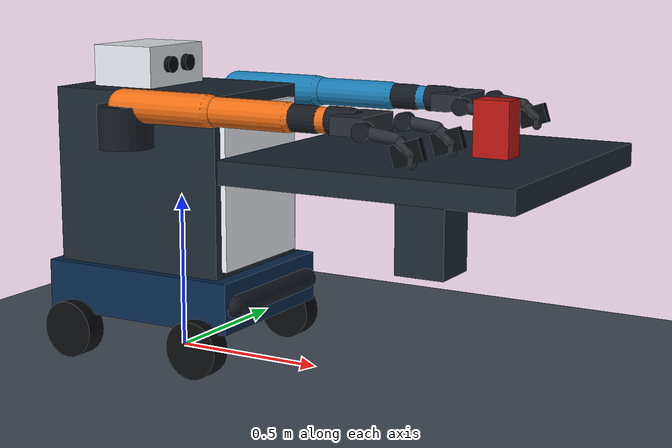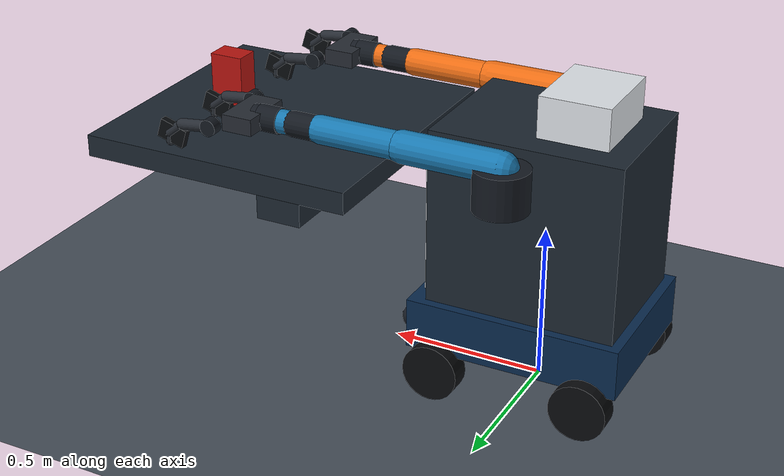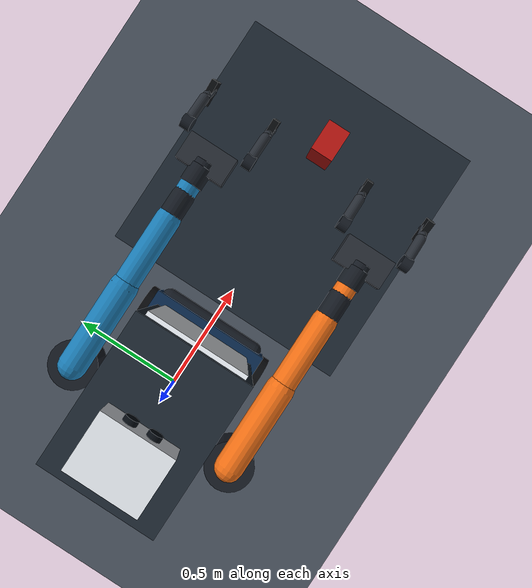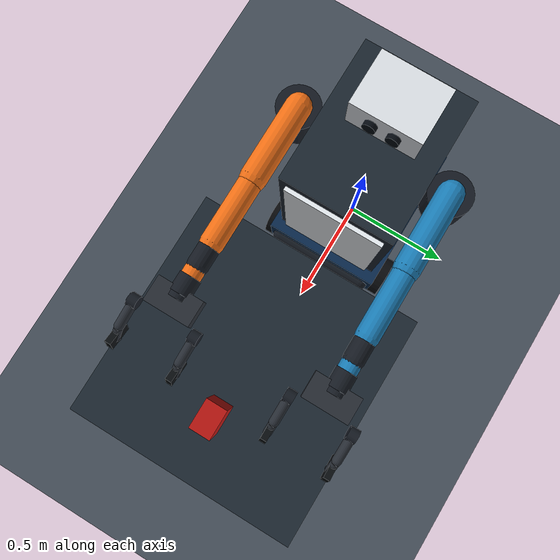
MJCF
<mujoco model="hwr_dual_arm_household_robot_smoke_v2">
  <compiler angle="radian" autolimits="true" inertiafromgeom="true"/>
  <option timestep="0.002" gravity="0 0 -9.81" integrator="implicitfast">
    <flag multiccd="enable"/>
  </option>
  <size memory="32M"/>

  <visual>
    <global offwidth="640" offheight="480"/>
    <quality shadowsize="4096"/>
    <headlight ambient="0.25 0.25 0.25" diffuse="0.6 0.6 0.6" specular="0.2 0.2 0.2"/>
  </visual>

  <asset>
    <include file="common/robot_assets.xml"/>
    <texture name="floor_checker" type="2d" builtin="checker" width="512" height="512"
             rgb1="0.20 0.23 0.27" rgb2="0.34 0.38 0.43"/>
    <material name="floor_material" texture="floor_checker" texrepeat="8 8" reflectance="0.08"/>
    <material name="object_material" rgba="0.72 0.08 0.06 1" metallic="0.05" roughness="0.6"/>
  </asset>

  <default>
    <include file="common/robot_defaults.xml"/>
  </default>

  <worldbody>
    <geom name="floor" type="plane" size="4 4 0.1" material="floor_material"/>
    <light name="key_light" pos="1.5 -2.0 3.5" dir="-0.2 0.3 -1" directional="true" castshadow="true"/>
    <light name="fill_light" pos="-2.0 1.5 2.4" diffuse="0.45 0.50 0.58" castshadow="true"/>
    <camera name="third_person" pos="3.1 -3.1 2.5" xyaxes="0.707 0.707 0 -0.350 0.350 0.869" fovy="48"/>
    <include file="common/robot_body.xml"/>
    <body name="smoke_table" pos="0.90 0 0.35">
      <geom name="smoke_table_top" type="box" pos="0 0 0.33" size="0.45 0.45 0.035"
            material="body_material"/>
      <geom type="box" pos="0 0 0.15" size="0.08 0.08 0.15" material="body_material"/>
    </body>
    <body name="smoke_object" pos="1.1 0 0.79">
      <freejoint name="smoke_object_free"/>
      <geom name="smoke_object_geom" type="box" size="0.055 0.04 0.09" mass="0.12"
            material="object_material" friction="1.5 0.03 0.003"/>
    </body>
  </worldbody>

  <contact>
    <include file="common/robot_contacts.xml"/>
  </contact>
  <actuator>
    <include file="common/robot_actuators.xml"/>
  </actuator>
  <sensor>
    <include file="common/robot_sensors.xml"/>
  </sensor>
</mujoco>

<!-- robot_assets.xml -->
<mujocoinclude>
  <material name="chassis_material" rgba="0.035 0.16 0.30 1" metallic="0.3" roughness="0.28"/>
  <material name="body_material" rgba="0.11 0.15 0.19 1" metallic="0.22" roughness="0.34"/>
  <material name="panel_material" rgba="0.92 0.94 0.96 1" metallic="0.08" roughness="0.28"/>
  <material name="arm_material" rgba="0.93 0.43 0.08 1" metallic="0.18" roughness="0.28"/>
  <material name="arm_secondary_material" rgba="0.10 0.48 0.70 1" metallic="0.18" roughness="0.28"/>
  <material name="joint_material" rgba="0.08 0.10 0.13 1" metallic="0.65" roughness="0.24"/>
  <material name="gripper_material" rgba="0.15 0.17 0.20 1" metallic="0.28" roughness="0.48"/>
  <material name="gripper_pad_material" rgba="0.035 0.045 0.055 1" metallic="0.02" roughness="0.86"/>
  <material name="wheel_material" rgba="0.035 0.04 0.05 1" metallic="0.05" roughness="0.72"/>
  <material name="camera_material" rgba="0.88 0.90 0.92 1" metallic="0.16" roughness="0.26"/>
  <material name="camera_lens_material" rgba="0.015 0.035 0.06 1" metallic="0.38" roughness="0.12"/>
</mujocoinclude>

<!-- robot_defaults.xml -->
<mujocoinclude>
  <joint damping="1.0" armature="0.02" frictionloss="0.05"/>
  <geom condim="4" friction="0.9 0.01 0.001" solref="0.006 1" solimp="0.9 0.95 0.001"/>
  <default class="arm_joint">
    <joint damping="2.0" armature="0.05"/>
  </default>
  <default class="finger_joint">
    <joint damping="3.0" armature="0.01"/>
  </default>
  <default class="finger_pad">
    <geom condim="4" friction="3.0 0.04 0.004" solref="0.004 1"/>
  </default>
</mujocoinclude>

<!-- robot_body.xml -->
<mujocoinclude>
  <body name="robot_base" pos="0 0 0.22">
    <freejoint name="base_free"/>
    <geom name="chassis_collision" type="box" size="0.34 0.26 0.08" density="400"
          material="chassis_material"/>
    <geom name="body_box_collision" type="box" pos="-0.01 0 0.35" size="0.30 0.23 0.29"
          density="120" material="body_material"/>
    <geom name="body_front_panel" type="box" pos="0.295 0 0.35" size="0.012 0.20 0.25"
          mass="0.05" contype="0" conaffinity="0" material="panel_material"/>
    <geom name="bumper_front" type="capsule" fromto="0.34 -0.21 0 0.34 0.21 0" size="0.035"
          density="300" material="joint_material"/>
    <site name="base_imu" pos="0 0 0.12" size="0.012" rgba="0 1 0 0"/>

    <body name="top_camera_head" pos="-0.12 0 0.70">
      <geom name="camera_head_housing" type="box" size="0.11 0.14 0.07" density="180"
            material="camera_material"/>
      <geom name="camera_rgb_lens" type="cylinder" pos="0.118 -0.045 0.01" size="0.026 0.012"
            quat="0.707107 0 0.707107 0" mass="0.02" contype="0" conaffinity="0"
            material="camera_lens_material"/>
      <geom name="camera_depth_lens" type="cylinder" pos="0.118 0.045 0.01" size="0.026 0.012"
            quat="0.707107 0 0.707107 0" mass="0.02" contype="0" conaffinity="0"
            material="camera_lens_material"/>
      <camera name="head_rgb" pos="0.13 -0.045 0.01" xyaxes="0 -1 0 0.16 0 0.987" fovy="66"/>
      <camera name="head_depth" pos="0.13 0.045 0.01" xyaxes="0 -1 0 0.16 0 0.987" fovy="66"/>
    </body>

    <body name="wheel_front_left" pos="0.24 0.27 -0.13">
      <joint name="wheel_front_left_joint" type="hinge" axis="0 1 0" limited="false" damping="0.15"/>
      <geom name="wheel_front_left_geom" type="cylinder" size="0.09 0.035"
            quat="0.707107 0.707107 0 0" density="450" material="wheel_material"
            friction="1.3 0.003 0.0002"/>
    </body>
    <body name="wheel_rear_left" pos="-0.24 0.27 -0.13">
      <joint name="wheel_rear_left_joint" type="hinge" axis="0 1 0" limited="false" damping="0.15"/>
      <geom name="wheel_rear_left_geom" type="cylinder" size="0.09 0.035"
            quat="0.707107 0.707107 0 0" density="450" material="wheel_material"
            friction="1.3 0.003 0.0002"/>
    </body>
    <body name="wheel_front_right" pos="0.24 -0.27 -0.13">
      <joint name="wheel_front_right_joint" type="hinge" axis="0 1 0" limited="false" damping="0.15"/>
      <geom name="wheel_front_right_geom" type="cylinder" size="0.09 0.035"
            quat="0.707107 0.707107 0 0" density="450" material="wheel_material"
            friction="1.3 0.003 0.0002"/>
    </body>
    <body name="wheel_rear_right" pos="-0.24 -0.27 -0.13">
      <joint name="wheel_rear_right_joint" type="hinge" axis="0 1 0" limited="false" damping="0.15"/>
      <geom name="wheel_rear_right_geom" type="cylinder" size="0.09 0.035"
            quat="0.707107 0.707107 0 0" density="450" material="wheel_material"
            friction="1.3 0.003 0.0002"/>
    </body>

    <body name="right_shoulder_pan_link" pos="0.02 -0.31 0.48" gravcomp="1">
      <joint name="right_arm_joint_1" class="arm_joint" type="hinge" axis="0 0 1" range="-3.05 3.05"/>
      <geom type="cylinder" size="0.085 0.065" pos="0 0 0.065" density="620" material="joint_material"/>
      <body name="right_upper_arm_link" pos="0 0 0.13" gravcomp="1">
        <joint name="right_arm_joint_2" class="arm_joint" type="hinge" axis="0 1 0" range="-1.75 1.45"/>
        <geom type="capsule" fromto="0 0 0 0.31 0 0" size="0.050" density="560" material="arm_material"/>
        <body name="right_forearm_link" pos="0.31 0 0" gravcomp="1">
          <joint name="right_arm_joint_3" class="arm_joint" type="hinge" axis="0 1 0" range="-2.55 2.55"/>
          <geom type="capsule" fromto="0 0 0 0.27 0 0" size="0.044" density="520" material="arm_material"/>
          <body name="right_wrist_roll_link" pos="0.27 0 0" gravcomp="1">
            <joint name="right_arm_joint_4" class="arm_joint" type="hinge" axis="1 0 0" range="-3.05 3.05"/>
            <geom type="capsule" fromto="0 0 0 0.09 0 0" size="0.040" density="500" material="joint_material"/>
            <body name="right_wrist_pitch_link" pos="0.09 0 0" gravcomp="1">
              <joint name="right_arm_joint_5" class="arm_joint" type="hinge" axis="0 1 0" range="-2.10 2.10"/>
              <geom type="capsule" fromto="0 0 0 0.08 0 0" size="0.037" density="480" material="arm_material"/>
              <body name="right_wrist_yaw_link" pos="0.08 0 0" gravcomp="1">
                <joint name="right_arm_joint_6" class="arm_joint" type="hinge" axis="1 0 0" range="-3.05 3.05"/>
                <geom type="cylinder" size="0.041 0.035" quat="0.707107 0 0.707107 0"
                      density="470" material="joint_material"/>
                <body name="right_gripper_palm" pos="0.065 0 0" gravcomp="1">
                  <geom name="right_gripper_palm_shell" type="box" size="0.050 0.090 0.026"
                        density="470" material="gripper_material"/>
                  <geom name="right_gripper_wrist_adapter" type="cylinder" pos="-0.035 0 0"
                        size="0.038 0.025" quat="0.707107 0 0.707107 0"
                        density="420" material="joint_material"/>
                  <camera name="wrist_rgb" pos="0.012 0 0.060" xyaxes="0 -1 0 0 0 1" fovy="72"/>
                  <site name="right_grasp_center" pos="0.190 0 -0.045" size="0.012" rgba="0 1 0 0"/>
                  <body name="right_gripper_left_finger" pos="0.070 0.122 -0.005" gravcomp="1">
                    <joint name="right_gripper_left_finger_joint" class="finger_joint" type="slide"
                           axis="0 -1 0" range="0 0.085"/>
                    <geom name="right_gripper_left_knuckle" type="cylinder" size="0.026 0.018"
                          quat="0.707107 0.707107 0 0" density="390"
                          material="joint_material"/>
                    <geom name="right_gripper_left_proximal" type="capsule"
                          fromto="0 0 0 0.100 0 -0.012" size="0.018" density="360"
                          material="gripper_material"/>
                    <geom name="right_gripper_left_distal" type="capsule"
                          fromto="0.100 0 -0.012 0.145 0 -0.047" size="0.016" density="340"
                          material="gripper_material"/>
                    <geom name="right_gripper_left_tip" type="capsule"
                          fromto="0.145 0 -0.047 0.145 0 -0.075" size="0.014" density="330"
                          material="gripper_material"/>
                    <geom name="right_gripper_left_pad" class="finger_pad" type="box"
                          size="0.045 0.012 0.030" pos="0.133 0 -0.045" euler="0 -0.30 0"
                          density="400" material="gripper_pad_material"/>
                  </body>
                  <body name="right_gripper_right_finger" pos="0.070 -0.122 -0.005" gravcomp="1">
                    <joint name="right_gripper_right_finger_joint" class="finger_joint" type="slide"
                           axis="0 1 0" range="0 0.085"/>
                    <geom name="right_gripper_right_knuckle" type="cylinder" size="0.026 0.018"
                          quat="0.707107 0.707107 0 0" density="390"
                          material="joint_material"/>
                    <geom name="right_gripper_right_proximal" type="capsule"
                          fromto="0 0 0 0.100 0 -0.012" size="0.018" density="360"
                          material="gripper_material"/>
                    <geom name="right_gripper_right_distal" type="capsule"
                          fromto="0.100 0 -0.012 0.145 0 -0.047" size="0.016" density="340"
                          material="gripper_material"/>
                    <geom name="right_gripper_right_tip" type="capsule"
                          fromto="0.145 0 -0.047 0.145 0 -0.075" size="0.014" density="330"
                          material="gripper_material"/>
                    <geom name="right_gripper_right_pad" class="finger_pad" type="box"
                          size="0.045 0.012 0.030" pos="0.133 0 -0.045" euler="0 -0.30 0"
                          density="400" material="gripper_pad_material"/>
                  </body>
                </body>
              </body>
            </body>
          </body>
        </body>
      </body>
    </body>

    <body name="left_shoulder_pan_link" pos="0.02 0.31 0.48" gravcomp="1">
      <joint name="left_arm_joint_1" class="arm_joint" type="hinge" axis="0 0 1" range="-3.05 3.05"/>
      <geom type="cylinder" size="0.085 0.065" pos="0 0 0.065" density="620" material="joint_material"/>
      <body name="left_upper_arm_link" pos="0 0 0.13" gravcomp="1">
        <joint name="left_arm_joint_2" class="arm_joint" type="hinge" axis="0 1 0" range="-1.75 1.45"/>
        <geom type="capsule" fromto="0 0 0 0.31 0 0" size="0.050" density="560" material="arm_secondary_material"/>
        <body name="left_forearm_link" pos="0.31 0 0" gravcomp="1">
          <joint name="left_arm_joint_3" class="arm_joint" type="hinge" axis="0 1 0" range="-2.55 2.55"/>
          <geom type="capsule" fromto="0 0 0 0.27 0 0" size="0.044" density="520" material="arm_secondary_material"/>
          <body name="left_wrist_roll_link" pos="0.27 0 0" gravcomp="1">
            <joint name="left_arm_joint_4" class="arm_joint" type="hinge" axis="1 0 0" range="-3.05 3.05"/>
            <geom type="capsule" fromto="0 0 0 0.09 0 0" size="0.040" density="500" material="joint_material"/>
            <body name="left_wrist_pitch_link" pos="0.09 0 0" gravcomp="1">
              <joint name="left_arm_joint_5" class="arm_joint" type="hinge" axis="0 1 0" range="-2.10 2.10"/>
              <geom type="capsule" fromto="0 0 0 0.08 0 0" size="0.037" density="480" material="arm_secondary_material"/>
              <body name="left_wrist_yaw_link" pos="0.08 0 0" gravcomp="1">
                <joint name="left_arm_joint_6" class="arm_joint" type="hinge" axis="1 0 0" range="-3.05 3.05"/>
                <geom type="cylinder" size="0.041 0.035" quat="0.707107 0 0.707107 0"
                      density="470" material="joint_material"/>
                <body name="left_gripper_palm" pos="0.065 0 0" gravcomp="1">
                  <geom name="left_gripper_palm_shell" type="box" size="0.050 0.090 0.026"
                        density="470" material="gripper_material"/>
                  <geom name="left_gripper_wrist_adapter" type="cylinder" pos="-0.035 0 0"
                        size="0.038 0.025" quat="0.707107 0 0.707107 0"
                        density="420" material="joint_material"/>
                  <camera name="left_wrist_rgb" pos="0.012 0 0.060" xyaxes="0 -1 0 0 0 1" fovy="72"/>
                  <site name="left_grasp_center" pos="0.190 0 -0.045" size="0.012" rgba="0 1 0 0"/>
                  <body name="left_gripper_left_finger" pos="0.070 0.122 -0.005" gravcomp="1">
                    <joint name="left_gripper_left_finger_joint" class="finger_joint" type="slide"
                           axis="0 -1 0" range="0 0.085"/>
                    <geom name="left_gripper_left_knuckle" type="cylinder" size="0.026 0.018"
                          quat="0.707107 0.707107 0 0" density="390"
                          material="joint_material"/>
                    <geom name="left_gripper_left_proximal" type="capsule"
                          fromto="0 0 0 0.100 0 -0.012" size="0.018" density="360"
                          material="gripper_material"/>
                    <geom name="left_gripper_left_distal" type="capsule"
                          fromto="0.100 0 -0.012 0.145 0 -0.047" size="0.016" density="340"
                          material="gripper_material"/>
                    <geom name="left_gripper_left_tip" type="capsule"
                          fromto="0.145 0 -0.047 0.145 0 -0.075" size="0.014" density="330"
                          material="gripper_material"/>
                    <geom name="left_gripper_left_pad" class="finger_pad" type="box"
                          size="0.045 0.012 0.030" pos="0.133 0 -0.045" euler="0 -0.30 0"
                          density="400" material="gripper_pad_material"/>
                  </body>
                  <body name="left_gripper_right_finger" pos="0.070 -0.122 -0.005" gravcomp="1">
                    <joint name="left_gripper_right_finger_joint" class="finger_joint" type="slide"
                           axis="0 1 0" range="0 0.085"/>
                    <geom name="left_gripper_right_knuckle" type="cylinder" size="0.026 0.018"
                          quat="0.707107 0.707107 0 0" density="390"
                          material="joint_material"/>
                    <geom name="left_gripper_right_proximal" type="capsule"
                          fromto="0 0 0 0.100 0 -0.012" size="0.018" density="360"
                          material="gripper_material"/>
                    <geom name="left_gripper_right_distal" type="capsule"
                          fromto="0.100 0 -0.012 0.145 0 -0.047" size="0.016" density="340"
                          material="gripper_material"/>
                    <geom name="left_gripper_right_tip" type="capsule"
                          fromto="0.145 0 -0.047 0.145 0 -0.075" size="0.014" density="330"
                          material="gripper_material"/>
                    <geom name="left_gripper_right_pad" class="finger_pad" type="box"
                          size="0.045 0.012 0.030" pos="0.133 0 -0.045" euler="0 -0.30 0"
                          density="400" material="gripper_pad_material"/>
                  </body>
                </body>
              </body>
            </body>
          </body>
        </body>
      </body>
    </body>
  </body>
</mujocoinclude>

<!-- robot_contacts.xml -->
<mujocoinclude>
  <exclude body1="robot_base" body2="right_shoulder_pan_link"/>
  <exclude body1="right_shoulder_pan_link" body2="right_upper_arm_link"/>
  <exclude body1="right_upper_arm_link" body2="right_forearm_link"/>
  <exclude body1="right_forearm_link" body2="right_wrist_roll_link"/>
  <exclude body1="right_wrist_roll_link" body2="right_wrist_pitch_link"/>
  <exclude body1="right_wrist_pitch_link" body2="right_wrist_yaw_link"/>
  <exclude body1="right_wrist_yaw_link" body2="right_gripper_palm"/>
  <exclude body1="right_gripper_palm" body2="right_gripper_left_finger"/>
  <exclude body1="right_gripper_palm" body2="right_gripper_right_finger"/>
  <exclude body1="robot_base" body2="left_shoulder_pan_link"/>
  <exclude body1="left_shoulder_pan_link" body2="left_upper_arm_link"/>
  <exclude body1="left_upper_arm_link" body2="left_forearm_link"/>
  <exclude body1="left_forearm_link" body2="left_wrist_roll_link"/>
  <exclude body1="left_wrist_roll_link" body2="left_wrist_pitch_link"/>
  <exclude body1="left_wrist_pitch_link" body2="left_wrist_yaw_link"/>
  <exclude body1="left_wrist_yaw_link" body2="left_gripper_palm"/>
  <exclude body1="left_gripper_palm" body2="left_gripper_left_finger"/>
  <exclude body1="left_gripper_palm" body2="left_gripper_right_finger"/>
</mujocoinclude>

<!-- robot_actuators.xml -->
<mujocoinclude>
  <velocity name="wheel_front_left_velocity" joint="wheel_front_left_joint" kv="18" forcerange="-30 30"/>
  <velocity name="wheel_rear_left_velocity" joint="wheel_rear_left_joint" kv="18" forcerange="-30 30"/>
  <velocity name="wheel_front_right_velocity" joint="wheel_front_right_joint" kv="18" forcerange="-30 30"/>
  <velocity name="wheel_rear_right_velocity" joint="wheel_rear_right_joint" kv="18" forcerange="-30 30"/>
  <position name="right_arm_joint_1_position" joint="right_arm_joint_1" kp="180" kv="24" forcerange="-75 75"/>
  <position name="right_arm_joint_2_position" joint="right_arm_joint_2" kp="180" kv="24" forcerange="-75 75"/>
  <position name="right_arm_joint_3_position" joint="right_arm_joint_3" kp="160" kv="20" forcerange="-60 60"/>
  <position name="right_arm_joint_4_position" joint="right_arm_joint_4" kp="100" kv="14" forcerange="-35 35"/>
  <position name="right_arm_joint_5_position" joint="right_arm_joint_5" kp="90" kv="12" forcerange="-30 30"/>
  <position name="right_arm_joint_6_position" joint="right_arm_joint_6" kp="70" kv="10" forcerange="-22 22"/>
  <position name="left_arm_joint_1_position" joint="left_arm_joint_1" kp="180" kv="24" forcerange="-75 75"/>
  <position name="left_arm_joint_2_position" joint="left_arm_joint_2" kp="180" kv="24" forcerange="-75 75"/>
  <position name="left_arm_joint_3_position" joint="left_arm_joint_3" kp="160" kv="20" forcerange="-60 60"/>
  <position name="left_arm_joint_4_position" joint="left_arm_joint_4" kp="100" kv="14" forcerange="-35 35"/>
  <position name="left_arm_joint_5_position" joint="left_arm_joint_5" kp="90" kv="12" forcerange="-30 30"/>
  <position name="left_arm_joint_6_position" joint="left_arm_joint_6" kp="70" kv="10" forcerange="-22 22"/>
  <position name="right_gripper_left_finger_position" joint="right_gripper_left_finger_joint"
            kp="260" kv="14" forcerange="-35 35"/>
  <position name="right_gripper_right_finger_position" joint="right_gripper_right_finger_joint"
            kp="260" kv="14" forcerange="-35 35"/>
  <position name="left_gripper_left_finger_position" joint="left_gripper_left_finger_joint"
            kp="260" kv="14" forcerange="-35 35"/>
  <position name="left_gripper_right_finger_position" joint="left_gripper_right_finger_joint"
            kp="260" kv="14" forcerange="-35 35"/>
</mujocoinclude>

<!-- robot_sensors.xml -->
<mujocoinclude>
  <gyro name="base_gyro" site="base_imu"/>
  <accelerometer name="base_accelerometer" site="base_imu"/>
</mujocoinclude>
